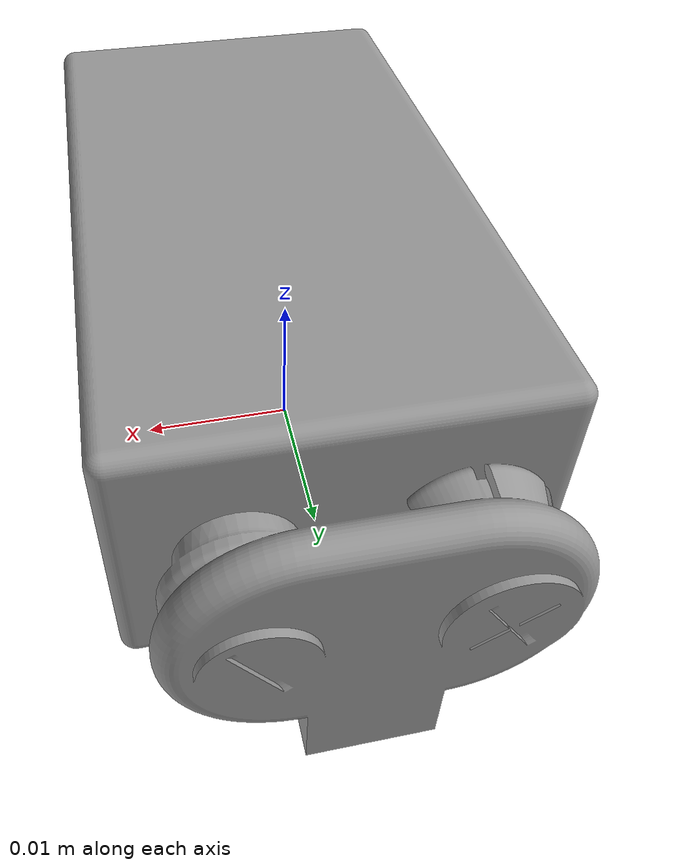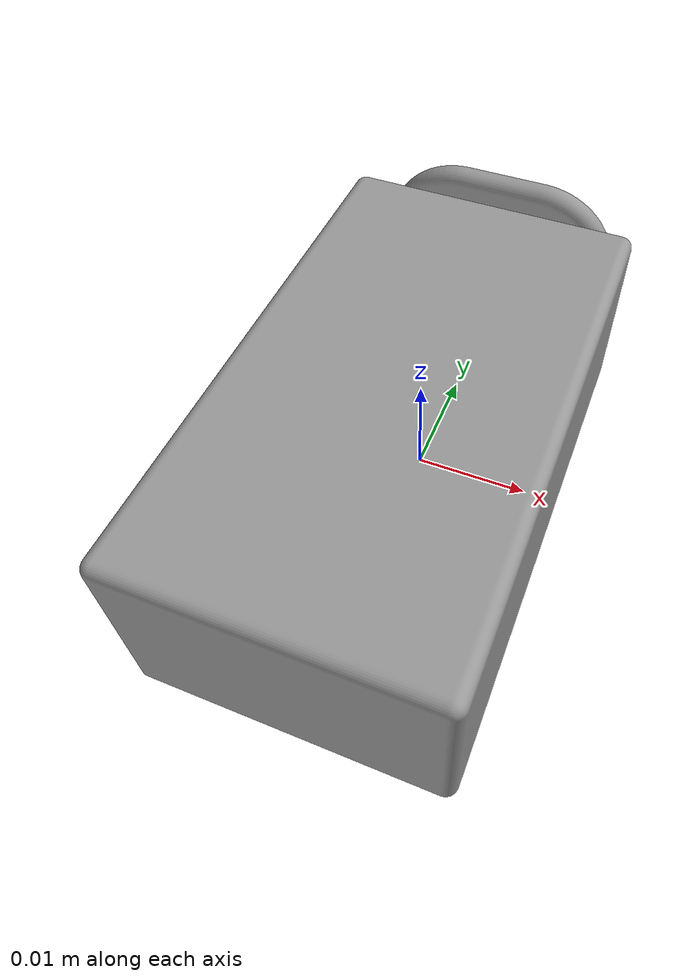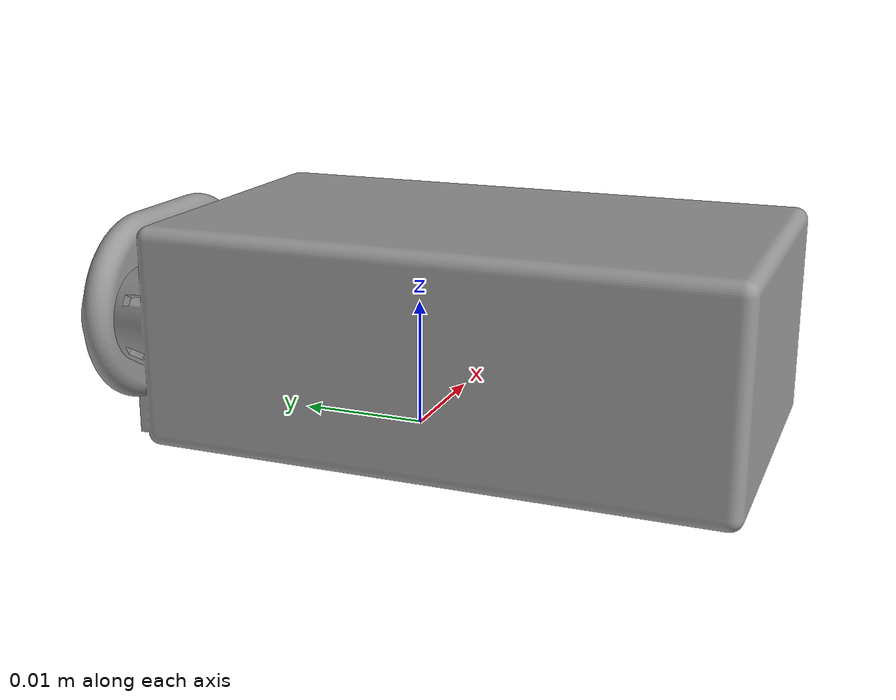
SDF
<?xml version="1.0" ?>
<sdf version="1.5">
  <model name="battery_9v">
    <pose>0 0.0 0.0085 0 0 0</pose>
    <link name="link">
      <inertial>
        <mass>0.05</mass>
        <inertia>
          <ixx>0.0001</ixx>
          <ixy>0</ixy>
          <ixz>0</ixz>
          <iyy>0.0001</iyy>
          <iyz>0</iyz>
          <izz>0.0001</izz>
        </inertia>
      </inertial>
      <collision name="collision">
        <pose>0 0 0.0 0 0 0</pose>
        <geometry>
          <box>
            <size>0.027 0.055 0.017</size>
          </box>
        </geometry>
      </collision>
      <visual name="visual">
        <pose>0 0 0.0 0 0 0</pose>
        <geometry>
          <mesh>
            <uri>model://battery_9v/meshes/battery_9v.dae</uri>
            <scale>0.001 0.001 0.001</scale>
          </mesh>
        </geometry>
        <material>
          <script>
            <uri>file://media/materials/scripts/gazebo.material</uri>
            <name>Gazebo/Grey</name>
          </script>
        </material>
      </visual>
    </link>
    <plugin filename="libPowerSourcePlugin.so" name="battery">
      <port>
        <name>positive</name>
        <type>electrical</type>
      </port>
      <port>
        <name>negative</name>
        <type>electrical</type>
      </port>
      <properties>
        <voltage>9</voltage>   <!-- Volts -->
       <capacity>0.60</capacity> <!-- Amp-hours  -->
        <current>0.1</current>   <!-- Amps -->
      </properties>
    </plugin>
  </model>
</sdf>
